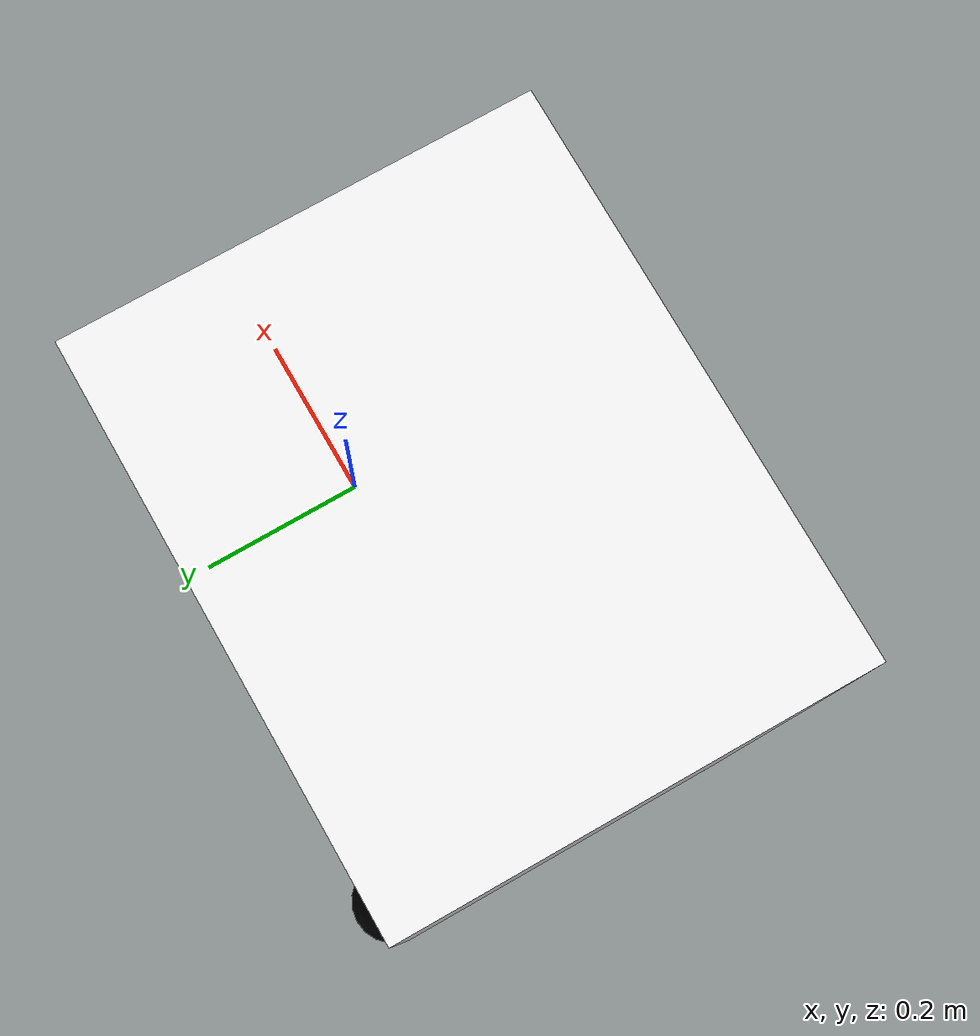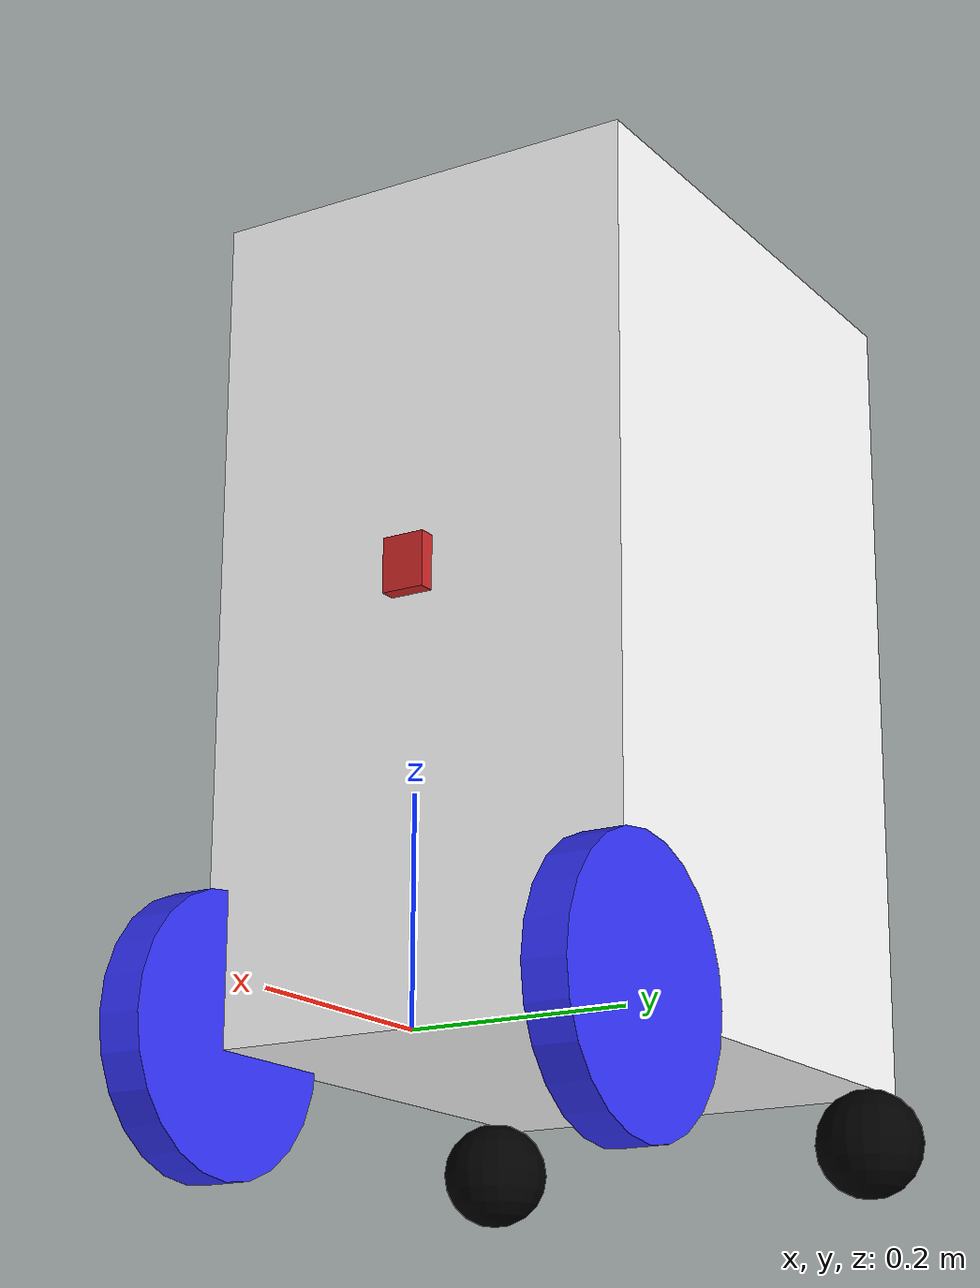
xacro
<?xml version="1.0"?>
<robot xmlns:xacro="http://www.ros.org/wiki/xacro"  name="robot">

    <xacro:arg name="use_ros2_control" default="true"/>
    <xacro:arg name="sim_mode" default="false"/>

    <xacro:include filename="robot_core.xacro" />

    <xacro:if value="$(arg use_ros2_control)">
        <xacro:include filename="ros2_control.xacro" />
    </xacro:if>
    <xacro:unless value="$(arg use_ros2_control)">
        <xacro:include filename="gazebo_control.xacro" />
    </xacro:unless>

    <xacro:include filename="depth_camera.xacro" />

</robot>

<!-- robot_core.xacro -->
<robot xmlns:xacro="http://www.ros.org/wiki/xacro" >

    <xacro:include filename="inertial_macros.xacro"/>

    <material name="white">
        <color rgba="1 1 1 1" />
    </material>

    <material name="orange">
        <color rgba="1 0.3 0.1 1"/>
    </material>

    <material name="blue">
        <color rgba="0.2 0.2 1 1"/>
    </material>

    <material name="black">
        <color rgba="0 0 0 1"/>
    </material>

    <!-- BASE LINK -->

    <link name="base_link">

    </link>

    <joint name="base_footprint_joint" type="fixed">
        <parent link="base_link"/>
        <child link="base_footprint"/>
        <origin xyz="0 0 0" rpy="0 0 0"/>
    </joint>

    <link name="base_footprint">
    </link>

    <!-- CHASSIS LINK -->

    <joint name="chassis_joint" type="fixed">
        <parent link="base_link"/>
        <child link="chassis"/>
        <origin xyz="-0.5 0 0"/>
    </joint>

    <link name="chassis">
        <visual>
            <origin xyz="0.255 0 0.385"/>
            <geometry>
                <box size="0.51 0.41 0.77"/>
            </geometry>
            <material name="white"/>
        </visual>
         <!-- same values as visual -->
        <collision>
            <origin xyz="0.255 0 0.385"/>
            <geometry>
                <box size="0.51 0.41 0.77"/>
            </geometry>
        </collision>
        <xacro:inertial_box mass="0.5" x="0.3" y="0.3" z="0.15">
            <origin xyz="0.15 0 0.075" rpy="0 0 0"/>
        </xacro:inertial_box>
    </link>

    <gazebo reference="chassis">
        <material>Gazebo/White</material>
    </gazebo>

    <!-- LEFT WHEEL LINK -->

    <joint name="left_wheel_joint" type="continuous">
        <parent link="base_link"/>
        <child link="left_wheel"/>
         <!-- change -->
        <origin xyz="0.0 0.2 .015" rpy="-${pi/2} 0 0" />
        <axis xyz="0 0 1"/>
    </joint>

    <link name="left_wheel">
        <visual>
            <geometry>
                <cylinder radius="0.125" length="0.04"/>
            </geometry>
            <material name="blue"/>
        </visual>
        <collision>
            <geometry>
                <sphere radius="0.125"/>
            </geometry>
        </collision>
        <xacro:inertial_cylinder mass="1" length="0.04" radius="0.05">
            <origin xyz="0 0 0" rpy="0 0 0"/>
        </xacro:inertial_cylinder>
    </link>

    <gazebo reference="left_wheel">
        <material>Gazebo/Blue</material>
    </gazebo>

    <!-- RIGHT WHEEL LINK -->

    <joint name="right_wheel_joint" type="continuous">
        <parent link="base_link"/>
        <child link="right_wheel"/>
        <origin xyz="0 -0.205 0.015" rpy="${pi/2} 0 0" />
        <axis xyz="0 0 -1"/>
    </joint>

    <link name="right_wheel">
        <visual>
            <geometry>
                <cylinder radius="0.125" length="0.04"/>
            </geometry>
            <material name="blue"/>
        </visual>
        <collision>
            <geometry>
                <sphere radius="0.125"/>
            </geometry>
        </collision>
        <xacro:inertial_cylinder mass="1" length="0.04" radius="0.05">
            <origin xyz="0 0 0" rpy="0 0 0"/>
        </xacro:inertial_cylinder>
    </link>

    <gazebo reference="right_wheel">
        <material>Gazebo/Blue</material>
    </gazebo>

    <!-- RIGHT CASTER WHEEL LINK -->

    <joint name="right_caster_wheel_joint" type="fixed">
        <parent link="chassis"/>
        <child link="right_caster_wheel"/>
        <origin xyz="0.05 -0.2 -0.05"/>
    </joint>

    <link name="right_caster_wheel">
        <visual>
            <geometry>
                <sphere radius="0.05"/>
            </geometry>
            <material name="black"/>
        </visual>
        <collision>
            <geometry>
                <sphere radius="0.05"/>
            </geometry>
        </collision>
        <xacro:inertial_sphere mass="0.1" radius="0.05">
            <origin xyz="0 0 0" rpy="0 0 0"/>
        </xacro:inertial_sphere>
    </link>

    <gazebo reference="right_caster_wheel">
        <material>Gazebo/Black</material>
        <mu1 value="0.01"/>
        <mu2 value="0.01"/>
    </gazebo>

        <!-- LEFT CASTER WHEEL LINK -->

    <joint name="left_caster_wheel_joint" type="fixed">
        <parent link="chassis"/>
        <child link="left_caster_wheel"/>
        <origin xyz="0.05 0.2 -0.05"/>
    </joint>

    <link name="left_caster_wheel">
        <visual>
            <geometry>
                <sphere radius="0.05"/>
            </geometry>
            <material name="black"/>
        </visual>
        <collision>
            <geometry>
                <sphere radius="0.05"/>
            </geometry>
        </collision>
        <xacro:inertial_sphere mass="0.1" radius="0.05">
            <origin xyz="0 0 0" rpy="0 0 0"/>
        </xacro:inertial_sphere>
    </link>

    <gazebo reference="left_caster_wheel">
        <material>Gazebo/Black</material>
        <mu1 value="0.01"/>
        <mu2 value="0.01"/>
    </gazebo>

</robot>

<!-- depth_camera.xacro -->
<robot xmlns:xacro="http://www.ros.org/wiki/xacro"  name="robot">

    <joint name="camera_joint" type="fixed">
        <parent link="chassis"/>
        <child link="camera_link" />
        <origin xyz="0.51 0 0.4" rpy="0 0 0" />
    </joint>

    <link name="camera_link">
        <visual>
            <geometry>
                <box size="0.03 0.04 0.05" />
            </geometry>
                <material name="red"/>
        </visual>
    </link>

    <joint name="camera_optical_joint" type="fixed">
        <parent link="camera_link"/>
        <child link="camera_link_optical" />
        <origin xyz="0 0 0" rpy="${-pi/2} 0 ${-pi/2}" />
    </joint>

    <link name="camera_link_optical">
    </link>

    <gazebo reference="camera_link">
        <material>Gazebo/Red</material>

        <sensor name="camera" type="depth">
            <pose> 0 0 0 0 0 0 </pose>
            <visualize>true</visualize>
            <update_rate>10</update_rate>
            <camera>
                <horizontal_fov>1.089</horizontal_fov>
                <image>
                    <format>B8G8R8</format>
                    <width>640</width>
                    <height>480</height>
                </image>
                <clip>
                    <near>0.05</near>
                    <far>8.0</far>
                </clip>
            </camera>
            <plugin name="camera_controller" filename="libgazebo_ros_camera.so">
                <frame_name>camera_link_optical</frame_name>
                <min_depth>0.1</min_depth>
                <max_depth>100.0</max_depth>
            </plugin>
        </sensor>
    </gazebo>
</robot>
